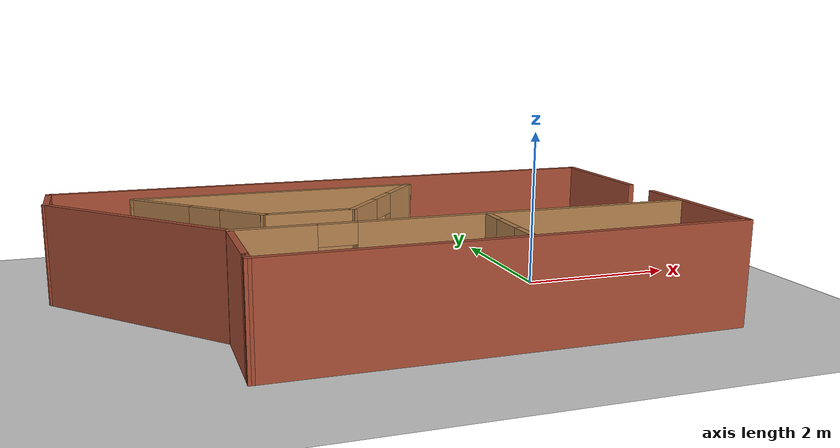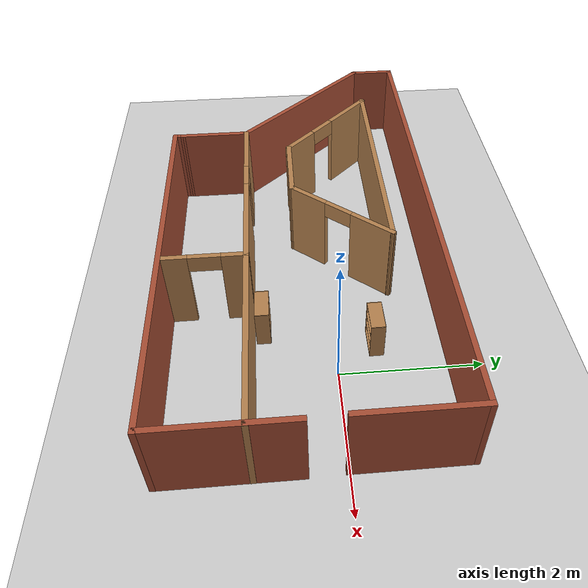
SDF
<sdf version="1.7">
 <world name="default">
  <light name="sun" type="directional">
   <pose>0 0 5 0 -0 0</pose>
   <diffuse>0.8 0.8 0.8 1</diffuse>
   <specular>0.2 0.2 0.2 1</specular>
   <attenuation>
    <range>500</range>
    <constant>0.9</constant>
    <linear>0.01</linear>
    <quadratic>0.001</quadratic>
   </attenuation>
   <direction>-0.5 0.1 -0.9</direction>
   <spot><inner_angle>0</inner_angle><outer_angle>0</outer_angle><falloff>0</falloff></spot>
  </light>
  <model name="ground_plane">
   <static>1</static>
   <link name="link">
    <collision name="collision">
     <geometry><plane><normal>0 0 1</normal><size>50 50</size></plane></geometry>
     <surface><friction><ode><mu>100</mu><mu2>50</mu2></ode></friction></surface>
    </collision>
    <visual name="visual">
     <cast_shadows>0</cast_shadows>
     <geometry><plane><normal>0 0 1</normal><size>50 50</size></plane></geometry>
     <material>
      <script><uri>file://media/materials/scripts/gazebo.material</uri><name>Gazebo/Grey</name></script>
     </material>
    </visual>
   </link>
  </model>
  <gravity>0 0 -9.8</gravity>
  <magnetic_field>6e-06 2.3e-05 -4.2e-05</magnetic_field>
  <atmosphere type="adiabatic"/>
  <physics type="ode">
   <max_step_size>0.001</max_step_size>
   <real_time_factor>1</real_time_factor>
   <real_time_update_rate>1000</real_time_update_rate>
  </physics>
  <scene><ambient>0.4 0.4 0.4 1</ambient><background>0.7 0.7 0.7 1</background><shadows>1</shadows></scene>
  <audio><device>default</device></audio>
  <spherical_coordinates>
   <surface_model>EARTH_WGS84</surface_model>
   <latitude_deg>0</latitude_deg>
   <longitude_deg>0</longitude_deg>
   <elevation>0</elevation>
   <heading_deg>0</heading_deg>
  </spherical_coordinates>
  <model name="mecanumbot_world">
   <pose>-2.286 -0.395713 0 0 -0 0</pose>
   <link name="Wall_0">
    <collision name="Wall_0_Collision">
     <geometry><box><size>1.875 0.075 1.25</size></box></geometry>
     <pose>0 0 0.625 0 -0 0</pose>
    </collision>
    <visual name="Wall_0_Visual">
     <pose>0 0 0.625 0 -0 0</pose>
     <geometry><box><size>1.875 0.075 1.25</size></box></geometry>
     <material>
      <script><uri>file://media/materials/scripts/gazebo.material</uri><name>Gazebo/Bricks</name></script>
      <ambient>1 1 1 1</ambient>
     </material>
     <meta><layer>0</layer></meta>
    </visual>
    <pose>3.726 -1.03429 0 0 -0 -1.5708</pose>
   </link>
   <link name="Wall_13">
    <pose>0.95351 -0.756495 0 0 -0 0</pose>
    <visual name="Wall_13_Visual_0">
     <pose>-2.322515 0 0.625 0 -0 0</pose>
     <geometry><box><size>0.979975 0.075 1.25</size></box></geometry>
     <material>
      <script><uri>file://media/materials/scripts/gazebo.material</uri><name>Gazebo/Wood</name></script>
      <ambient>1 1 1 1</ambient>
     </material>
     <meta><layer>0</layer></meta>
    </visual>
    <collision name="Wall_13_Collision_0">
     <geometry><box><size>0.979975 0.075 1.25</size></box></geometry>
     <pose>-2.322515 0 0.625 0 -0 0</pose>
    </collision>
    <visual name="Wall_13_Visual_1">
     <pose>0.714985 0 0.625 0 -0 0</pose>
     <geometry><box><size>4.195025 0.075 1.25</size></box></geometry>
     <material>
      <script><uri>file://media/materials/scripts/gazebo.material</uri><name>Gazebo/Wood</name></script>
      <ambient>1 1 1 1</ambient>
     </material>
     <meta><layer>0</layer></meta>
    </visual>
    <collision name="Wall_13_Collision_1">
     <geometry><box><size>4.195025 0.075 1.25</size></box></geometry>
     <pose>0.714985 0 0.625 0 -0 0</pose>
    </collision>
    <visual name="Wall_13_Visual_2">
     <pose>-1.607525 0 1.125 0 -0 0</pose>
     <geometry><box><size>0.45 0.075 0.25</size></box></geometry>
     <material>
      <script><uri>file://media/materials/scripts/gazebo.material</uri><name>Gazebo/Wood</name></script>
      <ambient>1 1 1 1</ambient>
     </material>
     <meta><layer>0</layer></meta>
    </visual>
    <collision name="Wall_13_Collision_2">
     <geometry><box><size>0.45 0.075 0.25</size></box></geometry>
     <pose>-1.607525 0 1.125 0 -0 0</pose>
    </collision>
   </link>
   <link name="Wall_15">
    <pose>1.115915 -1.34089 0 0 -0 -1.5708</pose>
    <visual name="Wall_15_Visual_0">
     <pose>-0.435561 0 0.625 0 -0 0</pose>
     <geometry><box><size>0.378878 0.075 1.25</size></box></geometry>
     <material>
      <script><uri>file://media/materials/scripts/gazebo.material</uri><name>Gazebo/Wood</name></script>
      <ambient>1 1 1 1</ambient>
     </material>
     <meta><layer>0</layer></meta>
    </visual>
    <collision name="Wall_15_Collision_0">
     <geometry><box><size>0.378878 0.075 1.25</size></box></geometry>
     <pose>-0.435561 0 0.625 0 -0 0</pose>
    </collision>
    <visual name="Wall_15_Visual_1">
     <pose>0.414439 0 0.625 0 -0 0</pose>
     <geometry><box><size>0.421122 0.075 1.25</size></box></geometry>
     <material>
      <script><uri>file://media/materials/scripts/gazebo.material</uri><name>Gazebo/Wood</name></script>
      <ambient>1 1 1 1</ambient>
     </material>
     <meta><layer>0</layer></meta>
    </visual>
    <collision name="Wall_15_Collision_1">
     <geometry><box><size>0.421122 0.075 1.25</size></box></geometry>
     <pose>0.414439 0 0.625 0 -0 0</pose>
    </collision>
    <visual name="Wall_15_Visual_2">
     <pose>-0.021122 0 1.125 0 -0 0</pose>
     <geometry><box><size>0.45 0.075 0.25</size></box></geometry>
     <material>
      <script><uri>file://media/materials/scripts/gazebo.material</uri><name>Gazebo/Wood</name></script>
      <ambient>1 1 1 1</ambient>
     </material>
     <meta><layer>0</layer></meta>
    </visual>
    <collision name="Wall_15_Collision_2">
     <geometry><box><size>0.45 0.075 0.25</size></box></geometry>
     <pose>-0.021122 0 1.125 0 -0 0</pose>
    </collision>
   </link>
   <link name="Wall_17">
    <collision name="Wall_17_Collision">
     <geometry><box><size>3.625 0.075 1.25</size></box></geometry>
     <pose>0 0 0.625 0 -0 0</pose>
    </collision>
    <visual name="Wall_17_Visual">
     <pose>0 0 0.625 0 -0 0</pose>
     <geometry><box><size>3.625 0.075 1.25</size></box></geometry>
     <material>
      <script><uri>file://media/materials/scripts/gazebo.material</uri><name>Gazebo/Wood</name></script>
      <ambient>1 1 1 1</ambient>
     </material>
     <meta><layer>0</layer></meta>
    </visual>
    <pose>-0.922025 1.289615 0 0 -0 0</pose>
   </link>
   <link name="Wall_19">
    <pose>-2.016435 0.609025 0 0 -0 -0.785398</pose>
    <visual name="Wall_19_Visual_0">
     <pose>-0.5395 0 0.625 0 -0 0</pose>
     <geometry><box><size>0.921 0.075 1.25</size></box></geometry>
     <material>
      <script><uri>file://media/materials/scripts/gazebo.material</uri><name>Gazebo/Wood</name></script>
      <ambient>1 1 1 1</ambient>
     </material>
     <meta><layer>0</layer></meta>
    </visual>
    <collision name="Wall_19_Collision_0">
     <geometry><box><size>0.921 0.075 1.25</size></box></geometry>
     <pose>-0.5395 0 0.625 0 -0 0</pose>
    </collision>
    <visual name="Wall_19_Visual_1">
     <pose>0.6855 0 0.625 0 -0 0</pose>
     <geometry><box><size>0.629 0.075 1.25</size></box></geometry>
     <material>
      <script><uri>file://media/materials/scripts/gazebo.material</uri><name>Gazebo/Wood</name></script>
      <ambient>1 1 1 1</ambient>
     </material>
     <meta><layer>0</layer></meta>
    </visual>
    <collision name="Wall_19_Collision_1">
     <geometry><box><size>0.629 0.075 1.25</size></box></geometry>
     <pose>0.6855 0 0.625 0 -0 0</pose>
    </collision>
    <visual name="Wall_19_Visual_2">
     <pose>0.145999 0 1.125 0 -0 0</pose>
     <geometry><box><size>0.45 0.075 0.25</size></box></geometry>
     <material>
      <script><uri>file://media/materials/scripts/gazebo.material</uri><name>Gazebo/Wood</name></script>
      <ambient>1 1 1 1</ambient>
     </material>
     <meta><layer>0</layer></meta>
    </visual>
    <collision name="Wall_19_Collision_2">
     <geometry><box><size>0.45 0.075 0.25</size></box></geometry>
     <pose>0.145999 0 1.125 0 -0 0</pose>
    </collision>
   </link>
   <link name="Wall_2">
    <collision name="Wall_2_Collision">
     <geometry><box><size>1.625 0.075 1.25</size></box></geometry>
     <pose>0 0 0.625 0 -0 0</pose>
    </collision>
    <visual name="Wall_2_Visual">
     <pose>0 0 0.625 0 -0 0</pose>
     <geometry><box><size>1.625 0.075 1.25</size></box></geometry>
     <material>
      <script><uri>file://media/materials/scripts/gazebo.material</uri><name>Gazebo/Bricks</name></script>
      <ambient>1 1 1 1</ambient>
     </material>
     <meta><layer>0</layer></meta>
    </visual>
    <pose>3.711995 1.160015 0 0 -0 1.5708</pose>
   </link>
   <link name="Wall_20">
    <collision name="Wall_20_Collision">
     <geometry><box><size>1.125 0.075 1.25</size></box></geometry>
     <pose>0 0 0.625 0 -0 0</pose>
    </collision>
    <visual name="Wall_20_Visual">
     <pose>0 0 0.625 0 -0 0</pose>
     <geometry><box><size>1.125 0.075 1.25</size></box></geometry>
     <material>
      <script><uri>file://media/materials/scripts/gazebo.material</uri><name>Gazebo/Wood</name></script>
      <ambient>1 1 1 1</ambient>
     </material>
     <meta><layer>0</layer></meta>
    </visual>
    <pose>-0.810845 -0.071565 0 0 -0 0</pose>
   </link>
   <link name="Wall_21">
    <pose>0.283566 0.609025 0 0 -0 0.874109</pose>
    <visual name="Wall_21_Visual_0">
     <pose>-0.59025 0 0.625 0 -0 0</pose>
     <geometry><box><size>0.669245 0.075 1.25</size></box></geometry>
     <material>
      <script><uri>file://media/materials/scripts/gazebo.material</uri><name>Gazebo/Wood</name></script>
      <ambient>1 1 1 1</ambient>
     </material>
     <meta><layer>0</layer></meta>
    </visual>
    <collision name="Wall_21_Collision_0">
     <geometry><box><size>0.669245 0.075 1.25</size></box></geometry>
     <pose>-0.59025 0 0.625 0 -0 0</pose>
    </collision>
    <visual name="Wall_21_Visual_1">
     <pose>0.55962 0 0.625 0 -0 0</pose>
     <geometry><box><size>0.730505 0.075 1.25</size></box></geometry>
     <material>
      <script><uri>file://media/materials/scripts/gazebo.material</uri><name>Gazebo/Wood</name></script>
      <ambient>1 1 1 1</ambient>
     </material>
     <meta><layer>0</layer></meta>
    </visual>
    <collision name="Wall_21_Collision_1">
     <geometry><box><size>0.730505 0.075 1.25</size></box></geometry>
     <pose>0.55962 0 0.625 0 -0 0</pose>
    </collision>
    <visual name="Wall_21_Visual_2">
     <pose>-0.03063 0 1.125 0 -0 0</pose>
     <geometry><box><size>0.45 0.075 0.25</size></box></geometry>
     <material>
      <script><uri>file://media/materials/scripts/gazebo.material</uri><name>Gazebo/Wood</name></script>
      <ambient>1 1 1 1</ambient>
     </material>
     <meta><layer>0</layer></meta>
    </visual>
    <collision name="Wall_21_Collision_2">
     <geometry><box><size>0.45 0.075 0.25</size></box></geometry>
     <pose>-0.03063 0 1.125 0 -0 0</pose>
    </collision>
   </link>
   <link name="Wall_3">
    <collision name="Wall_3_Collision">
     <geometry><box><size>7.5 0.075 1.25</size></box></geometry>
     <pose>0 0 0.625 0 -0 0</pose>
    </collision>
    <visual name="Wall_3_Visual">
     <pose>0 0 0.625 0 -0 0</pose>
     <geometry><box><size>7.5 0.075 1.25</size></box></geometry>
     <material>
      <script><uri>file://media/materials/scripts/gazebo.material</uri><name>Gazebo/Bricks</name></script>
      <ambient>1 1 1 1</ambient>
     </material>
     <meta><layer>0</layer></meta>
    </visual>
    <pose>-0.000503 1.935015 0 0 -0 3.14159</pose>
   </link>
   <link name="Wall_4">
    <collision name="Wall_4_Collision">
     <geometry><box><size>0.75 0.075 1.25</size></box></geometry>
     <pose>0 0 0.625 0 -0 0</pose>
    </collision>
    <visual name="Wall_4_Visual">
     <pose>0 0 0.625 0 -0 0</pose>
     <geometry><box><size>0.75 0.075 1.25</size></box></geometry>
     <material>
      <script><uri>file://media/materials/scripts/gazebo.material</uri><name>Gazebo/Bricks</name></script>
      <ambient>1 1 1 1</ambient>
     </material>
     <meta><layer>0</layer></meta>
    </visual>
    <pose>-3.713 1.597515 0 0 -0 -1.5708</pose>
   </link>
   <link name="Wall_5">
    <collision name="Wall_5_Collision">
     <geometry><box><size>2.8398 0.075 1.25</size></box></geometry>
     <pose>0 0 0.625 0 -0 0</pose>
    </collision>
    <visual name="Wall_5_Visual">
     <pose>0 0 0.625 0 -0 0</pose>
     <geometry><box><size>2.8398 0.075 1.25</size></box></geometry>
     <material>
      <script><uri>file://media/materials/scripts/gazebo.material</uri><name>Gazebo/Bricks</name></script>
      <ambient>1 1 1 1</ambient>
     </material>
     <meta><layer>0</layer></meta>
    </visual>
    <pose>-2.767245 0.251761 0 0 -0 -0.817373</pose>
   </link>
   <link name="Wall_6">
    <collision name="Wall_6_Collision">
     <geometry><box><size>1.125 0.075 1.25</size></box></geometry>
     <pose>0 0 0.625 0 -0 0</pose>
    </collision>
    <visual name="Wall_6_Visual">
     <pose>0 0 0.625 0 -0 0</pose>
     <geometry><box><size>1.125 0.075 1.25</size></box></geometry>
     <material>
      <script><uri>file://media/materials/scripts/gazebo.material</uri><name>Gazebo/Bricks</name></script>
      <ambient>1 1 1 1</ambient>
     </material>
     <meta><layer>0</layer></meta>
    </visual>
    <pose>-1.82149 -1.281495 0 0 -0 -1.5708</pose>
   </link>
   <link name="Wall_8">
    <collision name="Wall_8_Collision">
     <geometry><box><size>5.625 0.075 1.25</size></box></geometry>
     <pose>0 0 0.625 0 -0 0</pose>
    </collision>
    <visual name="Wall_8_Visual">
     <pose>0 0 0.625 0 -0 0</pose>
     <geometry><box><size>5.625 0.075 1.25</size></box></geometry>
     <material>
      <script><uri>file://media/materials/scripts/gazebo.material</uri><name>Gazebo/Bricks</name></script>
      <ambient>1 1 1 1</ambient>
     </material>
     <meta><layer>0</layer></meta>
    </visual>
    <pose>0.951 -1.934285 0 0 -0 3.14159</pose>
   </link>
   <link name="Wall_9">
    <collision name="Wall_9_Collision">
     <geometry><box><size>0.202817 0.075 1.25</size></box></geometry>
     <pose>0 0 0.625 0 -0 0</pose>
    </collision>
    <visual name="Wall_9_Visual">
     <pose>0 0 0.625 0 -0 0</pose>
     <geometry><box><size>0.202817 0.075 1.25</size></box></geometry>
     <material>
      <script><uri>file://media/materials/scripts/gazebo.material</uri><name>Gazebo/Bricks</name></script>
      <ambient>1 1 1 1</ambient>
     </material>
     <meta><layer>0</layer></meta>
    </visual>
    <pose>-1.822745 -1.87039 0 0 -0 1.55117</pose>
   </link>
   <static>1</static>
  </model>
  <model name="bookshelf_2">
   <static>1</static>
   <link name="link">
    <inertial><mass>0.125</mass></inertial>
    <collision name="back">
     <pose>0 0.0025 0.3 0 -0 0</pose>
     <geometry><box><size>0.45 0.005 0.6</size></box></geometry>
    </collision>
    <visual name="visual1">
     <pose>0 0.0025 0.3 0 -0 0</pose>
     <geometry><box><size>0.45 0.005 0.6</size></box></geometry>
     <material>
      <script><uri>file://media/materials/scripts/gazebo.material</uri><name>Gazebo/Wood</name></script>
     </material>
    </visual>
    <collision name="left_side">
     <pose>0.225 -0.0975 0.3 0 -0 0</pose>
     <geometry><box><size>0.01 0.2 0.6</size></box></geometry>
    </collision>
    <visual name="visual2">
     <pose>0.225 -0.0975 0.3 0 -0 0</pose>
     <geometry><box><size>0.01 0.2 0.6</size></box></geometry>
     <material>
      <script><uri>file://media/materials/scripts/gazebo.material</uri><name>Gazebo/Wood</name></script>
     </material>
    </visual>
    <collision name="right_side">
     <pose>-0.225 -0.0975 0.3 0 -0 0</pose>
     <geometry><box><size>0.01 0.2 0.6</size></box></geometry>
    </collision>
    <visual name="visual3">
     <pose>-0.225 -0.0975 0.3 0 -0 0</pose>
     <geometry><box><size>0.01 0.2 0.6</size></box></geometry>
     <material>
      <script><uri>file://media/materials/scripts/gazebo.material</uri><name>Gazebo/Wood</name></script>
     </material>
    </visual>
    <collision name="bottom">
     <pose>0 -0.0975 0.015 0 -0 0</pose>
     <geometry><box><size>0.44 0.2 0.03</size></box></geometry>
    </collision>
    <visual name="visual4">
     <pose>0 -0.0975 0.015 0 -0 0</pose>
     <geometry><box><size>0.44 0.2 0.03</size></box></geometry>
     <material>
      <script><uri>file://media/materials/scripts/gazebo.material</uri><name>Gazebo/Wood</name></script>
     </material>
    </visual>
    <collision name="top">
     <pose>0 -0.0975 0.595 0 -0 0</pose>
     <geometry><box><size>0.44 0.2 0.01</size></box></geometry>
    </collision>
    <visual name="visual5">
     <pose>0 -0.0975 0.595 0 -0 0</pose>
     <geometry><box><size>0.44 0.2 0.01</size></box></geometry>
     <material>
      <script><uri>file://media/materials/scripts/gazebo.material</uri><name>Gazebo/Wood</name></script>
     </material>
    </visual>
    <collision name="low_shelf">
     <pose>0 -0.0975 0.215 0 -0 0</pose>
     <geometry><box><size>0.44 0.2 0.01</size></box></geometry>
    </collision>
    <visual name="visual6">
     <pose>0 -0.0975 0.215 0 -0 0</pose>
     <geometry><box><size>0.44 0.2 0.01</size></box></geometry>
     <material>
      <script><uri>file://media/materials/scripts/gazebo.material</uri><name>Gazebo/Wood</name></script>
     </material>
    </visual>
    <collision name="high_shelf">
     <pose>0 -0.0975 0.4 0 -0 0</pose>
     <geometry><box><size>0.44 0.2 0.01</size></box></geometry>
    </collision>
    <visual name="visual7">
     <pose>0 -0.0975 0.4 0 -0 0</pose>
     <geometry><box><size>0.44 0.2 0.01</size></box></geometry>
     <material>
      <script><uri>file://media/materials/scripts/gazebo.material</uri><name>Gazebo/Wood</name></script>
     </material>
    </visual>
   </link>
   <pose>-0.497771 0.657965 0 0 -0 0</pose>
  </model>
  <model name="bookshelf">
   <static>1</static>
   <link name="link">
    <inertial><mass>0.125</mass></inertial>
    <collision name="back">
     <pose>0 0.0025 0.3 0 -0 0</pose>
     <geometry><box><size>0.45 0.005 0.6</size></box></geometry>
    </collision>
    <visual name="visual1">
     <pose>0 0.0025 0.3 0 -0 0</pose>
     <geometry><box><size>0.45 0.005 0.6</size></box></geometry>
     <material>
      <script><uri>file://media/materials/scripts/gazebo.material</uri><name>Gazebo/Wood</name></script>
     </material>
    </visual>
    <collision name="left_side">
     <pose>0.225 -0.0975 0.3 0 -0 0</pose>
     <geometry><box><size>0.01 0.2 0.6</size></box></geometry>
    </collision>
    <visual name="visual2">
     <pose>0.225 -0.0975 0.3 0 -0 0</pose>
     <geometry><box><size>0.01 0.2 0.6</size></box></geometry>
     <material>
      <script><uri>file://media/materials/scripts/gazebo.material</uri><name>Gazebo/Wood</name></script>
     </material>
    </visual>
    <collision name="right_side">
     <pose>-0.225 -0.0975 0.3 0 -0 0</pose>
     <geometry><box><size>0.01 0.2 0.6</size></box></geometry>
    </collision>
    <visual name="visual3">
     <pose>-0.225 -0.0975 0.3 0 -0 0</pose>
     <geometry><box><size>0.01 0.2 0.6</size></box></geometry>
     <material>
      <script><uri>file://media/materials/scripts/gazebo.material</uri><name>Gazebo/Wood</name></script>
     </material>
    </visual>
    <collision name="bottom">
     <pose>0 -0.0975 0.015 0 -0 0</pose>
     <geometry><box><size>0.44 0.2 0.03</size></box></geometry>
    </collision>
    <visual name="visual4">
     <pose>0 -0.0975 0.015 0 -0 0</pose>
     <geometry><box><size>0.44 0.2 0.03</size></box></geometry>
     <material>
      <script><uri>file://media/materials/scripts/gazebo.material</uri><name>Gazebo/Wood</name></script>
     </material>
    </visual>
    <collision name="top">
     <pose>0 -0.0975 0.595 0 -0 0</pose>
     <geometry><box><size>0.44 0.2 0.01</size></box></geometry>
    </collision>
    <visual name="visual5">
     <pose>0 -0.0975 0.595 0 -0 0</pose>
     <geometry><box><size>0.44 0.2 0.01</size></box></geometry>
     <material>
      <script><uri>file://media/materials/scripts/gazebo.material</uri><name>Gazebo/Wood</name></script>
     </material>
    </visual>
    <collision name="low_shelf">
     <pose>0 -0.0975 0.215 0 -0 0</pose>
     <geometry><box><size>0.44 0.2 0.01</size></box></geometry>
    </collision>
    <visual name="visual6">
     <pose>0 -0.0975 0.215 0 -0 0</pose>
     <geometry><box><size>0.44 0.2 0.01</size></box></geometry>
     <material>
      <script><uri>file://media/materials/scripts/gazebo.material</uri><name>Gazebo/Wood</name></script>
     </material>
    </visual>
    <collision name="high_shelf">
     <pose>0 -0.0975 0.4 0 -0 0</pose>
     <geometry><box><size>0.44 0.2 0.01</size></box></geometry>
    </collision>
    <visual name="visual7">
     <pose>0 -0.0975 0.4 0 -0 0</pose>
     <geometry><box><size>0.44 0.2 0.01</size></box></geometry>
     <material>
      <script><uri>file://media/materials/scripts/gazebo.material</uri><name>Gazebo/Wood</name></script>
     </material>
    </visual>
   </link>
   <pose>-0.8399 -0.894125 0 0 -0 0</pose>
  </model>
  <model name="cabinet">
   <static>1</static>
   <link name="cabinet_bottom_plate">
    <inertial>
     <pose>0 0 -0.5 0 -0 0</pose>
     <inertia>
      <ixx>0.0640625</ixx>
      <ixy>0</ixy>
      <ixz>0</ixz>
      <iyy>0.0640625</iyy>
      <iyz>0</iyz>
      <izz>0.0640625</izz>
     </inertia>
     <mass>3.125</mass>
    </inertial>
    <collision name="cabinet_bottom_plate_geom">
     <pose>0 0 0.005 0 -0 0</pose>
     <geometry><box><size>0.225 0.225 0.01</size></box></geometry>
    </collision>
    <visual name="cabinet_bottom_plate_geom_visual">
     <pose>0 0 0.005 0 -0 0</pose>
     <geometry><box><size>0.225 0.225 0.01</size></box></geometry>
     <material>
      <script><uri>file://media/materials/scripts/gazebo.material</uri><name>Gazebo/Wood</name></script>
     </material>
    </visual>
    <collision name="cabinet_bottom_plate_geom_cabinet_back_plate">
     <pose>0.1175 0 0.255 0 -0 0</pose>
     <geometry><box><size>0.01 0.225 0.51</size></box></geometry>
    </collision>
    <visual name="cabinet_bottom_plate_geom_cabinet_back_plate_visual">
     <pose>0.1175 0 0.255 0 -0 0</pose>
     <geometry><box><size>0.01 0.225 0.51</size></box></geometry>
     <material>
      <script><uri>file://media/materials/scripts/gazebo.material</uri><name>Gazebo/Wood</name></script>
     </material>
    </visual>
    <collision name="cabinet_bottom_plate_geom_cabinet_left_plate">
     <pose>0 0.1175 0.255 0 -0 0</pose>
     <geometry><box><size>0.225 0.01 0.51</size></box></geometry>
    </collision>
    <visual name="cabinet_bottom_plate_geom_cabinet_left_plate_visual">
     <pose>0 0.1175 0.255 0 -0 0</pose>
     <geometry><box><size>0.225 0.01 0.51</size></box></geometry>
     <material>
      <script><uri>file://media/materials/scripts/gazebo.material</uri><name>Gazebo/Wood</name></script>
     </material>
    </visual>
    <collision name="cabinet_bottom_plate_geom_cabinet_middle_plate">
     <pose>0 0 0.255 0 -0 0</pose>
     <geometry><box><size>0.225 0.225 0.01</size></box></geometry>
    </collision>
    <visual name="cabinet_bottom_plate_geom_cabinet_middle_plate_visual">
     <pose>0 0 0.255 0 -0 0</pose>
     <geometry><box><size>0.225 0.225 0.01</size></box></geometry>
     <material>
      <script><uri>file://media/materials/scripts/gazebo.material</uri><name>Gazebo/Wood</name></script>
     </material>
    </visual>
    <collision name="cabinet_bottom_plate_geom_cabinet_right_plate">
     <pose>0 -0.1175 0.255 0 -0 0</pose>
     <geometry><box><size>0.225 0.01 0.51</size></box></geometry>
    </collision>
    <visual name="cabinet_bottom_plate_geom_cabinet_right_plate_visual">
     <pose>0 -0.1175 0.255 0 -0 0</pose>
     <geometry><box><size>0.225 0.01 0.51</size></box></geometry>
     <material>
      <script><uri>file://media/materials/scripts/gazebo.material</uri><name>Gazebo/Wood</name></script>
     </material>
    </visual>
    <collision name="cabinet_bottom_plate_geom_cabinet_top_plate">
     <pose>0 0 0.505 0 -0 0</pose>
     <geometry><box><size>0.225 0.225 0.01</size></box></geometry>
    </collision>
    <visual name="cabinet_bottom_plate_geom_cabinet_top_plate_visual">
     <pose>0 0 0.505 0 -0 0</pose>
     <geometry><box><size>0.225 0.225 0.01</size></box></geometry>
     <material>
      <script><uri>file://media/materials/scripts/gazebo.material</uri><name>Gazebo/Wood</name></script>
     </material>
    </visual>
   </link>
   <pose>1.249685 1.353675 0 0 -0 0</pose>
  </model>
  <model name="mecanumbot_world_0"><pose>-8.36035 -0.084632 0 0 -0 0</pose><static>1</static></model>
 </world>
</sdf>
